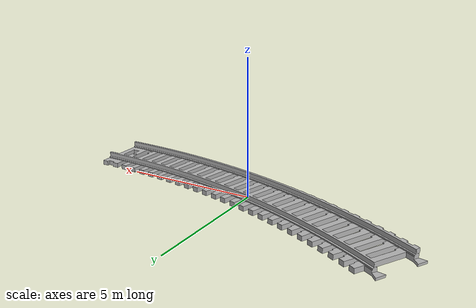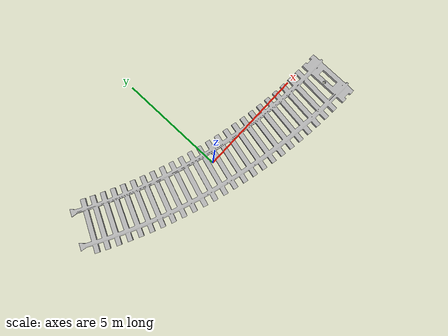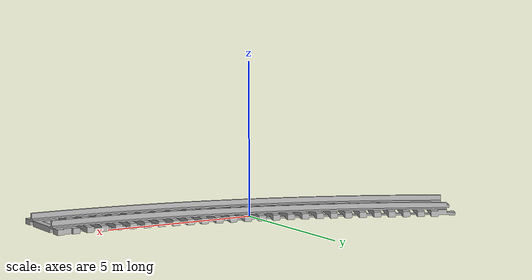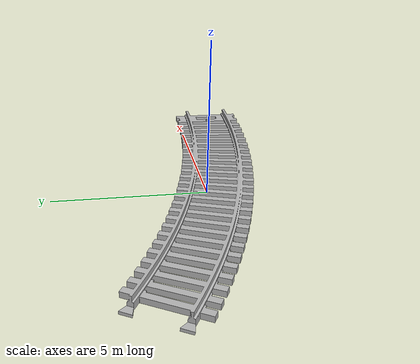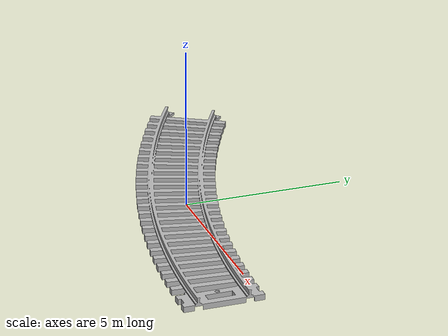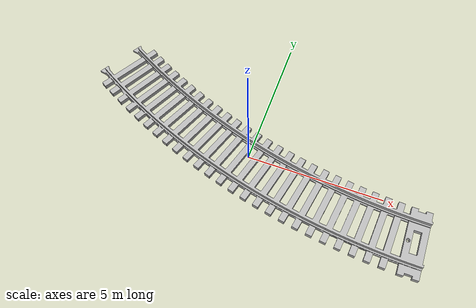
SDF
<?xml version="1.0" ?>
<sdf version="1.5">
  <model name="tracks_r">
        <static>true</static>
    <link name="link">
    <gravity>0</gravity>
      <collision name="collision">
        <geometry>
          <mesh>
            <scale>1 1 1</scale>
            <uri>model://tracks_30_r/meshes/tracks_r.dae</uri>
          </mesh>
        </geometry>
      </collision>
      <visual name="visual">
        <geometry>
          <mesh>
            <scale>1 1 1</scale>
            <uri>model://tracks_30_r/meshes/tracks_r.dae</uri>
          </mesh>
        </geometry>
      </visual>
    </link>
  </model>
</sdf>
